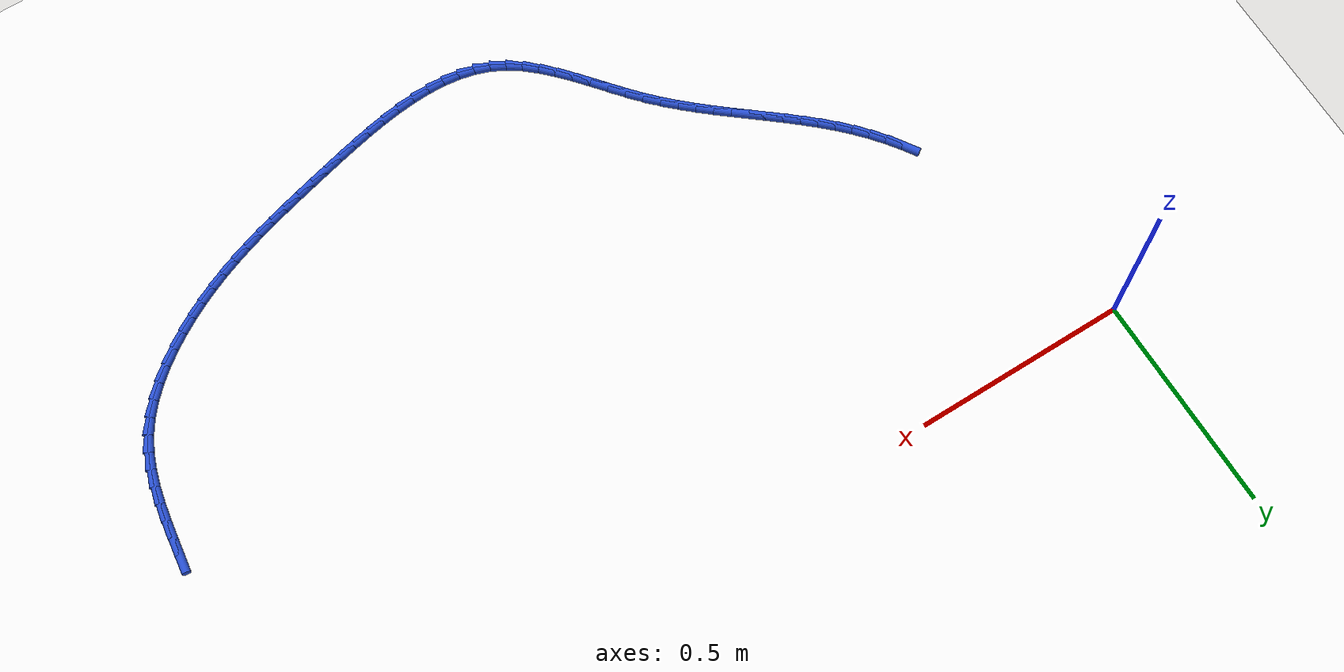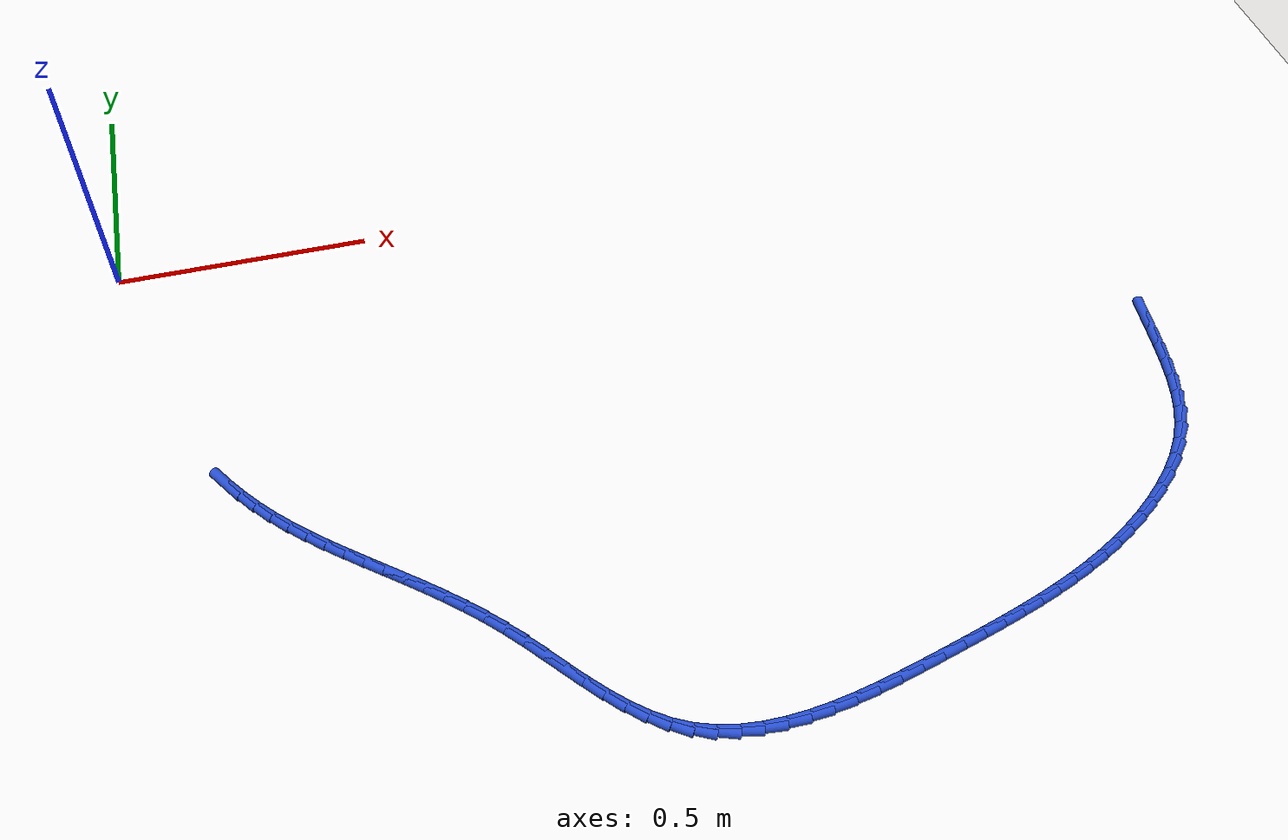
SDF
<sdf version="1.6">
 <world name="default">
  <model name="ground_plane">
   <static>1</static>
   <link name="link">
    <collision name="collision">
     <geometry><plane><normal>0 0 1</normal><size>100 100</size></plane></geometry>
     <surface><friction><ode><mu>100</mu><mu2>50</mu2></ode></friction></surface>
    </collision>
    <visual name="visual">
     <cast_shadows>0</cast_shadows>
     <geometry><plane><normal>0 0 1</normal><size>100 100</size></plane></geometry>
     <material>
      <script><uri>file://media/materials/scripts/gazebo.material</uri><name>Gazebo/WhiteGlow</name></script>
     </material>
    </visual>
   </link>
  </model>
  <model name="line">
   <link name="link_105">
    <pose>1.973548357519449 -0.58025492944759 0.01 0 1.57 1.4492766903073717</pose>
    <collision name="collision">
     <geometry><cylinder><radius>0.01</radius><length>0.08</length></cylinder></geometry>
    </collision>
    <visual name="visual">
     <material>
      <script><name>Gazebo/Blue</name><uri>file://media/materials/scripts/gazebo.material</uri></script>
     </material>
     <geometry><cylinder><radius>0.01</radius><length>0.08</length></cylinder></geometry>
    </visual>
   </link>
   <link name="link_106">
    <pose>1.9685726099421552 -0.6209992177766201 0.01 0 1.57 1.4419335434314304</pose>
    <collision name="collision">
     <geometry><cylinder><radius>0.01</radius><length>0.08</length></cylinder></geometry>
    </collision>
    <visual name="visual">
     <material>
      <script><name>Gazebo/Blue</name><uri>file://media/materials/scripts/gazebo.material</uri></script>
     </material>
     <geometry><cylinder><radius>0.01</radius><length>0.08</length></cylinder></geometry>
    </visual>
   </link>
   <link name="link_107">
    <pose>1.9633410162795428 -0.6613724230700463 0.01 0 1.57 1.4175273339095478</pose>
    <collision name="collision">
     <geometry><cylinder><radius>0.01</radius><length>0.08</length></cylinder></geometry>
    </collision>
    <visual name="visual">
     <material>
      <script><name>Gazebo/Blue</name><uri>file://media/materials/scripts/gazebo.material</uri></script>
     </material>
     <geometry><cylinder><radius>0.01</radius><length>0.08</length></cylinder></geometry>
    </visual>
   </link>
   <link name="link_108">
    <pose>1.957198220296294 -0.7011366274423665 0.01 0 1.57 1.3752323051563866</pose>
    <collision name="collision">
     <geometry><cylinder><radius>0.01</radius><length>0.08</length></cylinder></geometry>
    </collision>
    <visual name="visual">
     <material>
      <script><name>Gazebo/Blue</name><uri>file://media/materials/scripts/gazebo.material</uri></script>
     </material>
     <geometry><cylinder><radius>0.01</radius><length>0.08</length></cylinder></geometry>
    </visual>
   </link>
   <link name="link_109">
    <pose>1.9494888657570926 -0.740053913008079 0.01 0 1.57 1.3140817771518702</pose>
    <collision name="collision">
     <geometry><cylinder><radius>0.01</radius><length>0.08</length></cylinder></geometry>
    </collision>
    <visual name="visual">
     <material>
      <script><name>Gazebo/Blue</name><uri>file://media/materials/scripts/gazebo.material</uri></script>
     </material>
     <geometry><cylinder><radius>0.01</radius><length>0.08</length></cylinder></geometry>
    </visual>
   </link>
   <link name="link_110">
    <pose>1.9395575964266218 -0.7778863618816805 0.01 0 1.57 1.2333860749965508</pose>
    <collision name="collision">
     <geometry><cylinder><radius>0.01</radius><length>0.08</length></cylinder></geometry>
    </collision>
    <visual name="visual">
     <material>
      <script><name>Gazebo/Blue</name><uri>file://media/materials/scripts/gazebo.material</uri></script>
     </material>
     <geometry><cylinder><radius>0.01</radius><length>0.08</length></cylinder></geometry>
    </visual>
   </link>
   <link name="link_111">
    <pose>1.9267490560695637 -0.814396056177669 0.01 0 1.57 1.1334263797735051</pose>
    <collision name="collision">
     <geometry><cylinder><radius>0.01</radius><length>0.08</length></cylinder></geometry>
    </collision>
    <visual name="visual">
     <material>
      <script><name>Gazebo/Blue</name><uri>file://media/materials/scripts/gazebo.material</uri></script>
     </material>
     <geometry><cylinder><radius>0.01</radius><length>0.08</length></cylinder></geometry>
    </visual>
   </link>
   <link name="link_112">
    <pose>1.9104078884506035 -0.8493450780105428 0.01 0 1.57 1.0185992671122497</pose>
    <collision name="collision">
     <geometry><cylinder><radius>0.01</radius><length>0.08</length></cylinder></geometry>
    </collision>
    <visual name="visual">
     <material>
      <script><name>Gazebo/Blue</name><uri>file://media/materials/scripts/gazebo.material</uri></script>
     </material>
     <geometry><cylinder><radius>0.01</radius><length>0.08</length></cylinder></geometry>
    </visual>
   </link>
   <link name="link_113">
    <pose>1.889973962904009 -0.8825099161663439 0.01 0 1.57 0.9109781352713204</pose>
    <collision name="collision">
     <geometry><cylinder><radius>0.01</radius><length>0.08</length></cylinder></geometry>
    </collision>
    <visual name="visual">
     <material>
      <script><name>Gazebo/Blue</name><uri>file://media/materials/scripts/gazebo.material</uri></script>
     </material>
     <geometry><cylinder><radius>0.01</radius><length>0.08</length></cylinder></geometry>
    </visual>
   </link>
   <link name="link_114">
    <pose>1.8657057453491683 -0.9137909048665465 0.01 0 1.57 0.8194373521275445</pose>
    <collision name="collision">
     <geometry><cylinder><radius>0.01</radius><length>0.08</length></cylinder></geometry>
    </collision>
    <visual name="visual">
     <material>
      <script><name>Gazebo/Blue</name><uri>file://media/materials/scripts/gazebo.material</uri></script>
     </material>
     <geometry><cylinder><radius>0.01</radius><length>0.08</length></cylinder></geometry>
    </visual>
   </link>
   <link name="link_115">
    <pose>1.8382788992912098 -0.9431514961340004 0.01 0 1.57 0.7417631154560147</pose>
    <collision name="collision">
     <geometry><cylinder><radius>0.01</radius><length>0.08</length></cylinder></geometry>
    </collision>
    <visual name="visual">
     <material>
      <script><name>Gazebo/Blue</name><uri>file://media/materials/scripts/gazebo.material</uri></script>
     </material>
     <geometry><cylinder><radius>0.01</radius><length>0.08</length></cylinder></geometry>
    </visual>
   </link>
   <link name="link_116">
    <pose>1.8083724100826366 -0.9705556445536729 0.01 0 1.57 0.6756238333006152</pose>
    <collision name="collision">
     <geometry><cylinder><radius>0.01</radius><length>0.08</length></cylinder></geometry>
    </collision>
    <visual name="visual">
     <material>
      <script><name>Gazebo/Blue</name><uri>file://media/materials/scripts/gazebo.material</uri></script>
     </material>
     <geometry><cylinder><radius>0.01</radius><length>0.08</length></cylinder></geometry>
    </visual>
   </link>
   <link name="link_117">
    <pose>1.7766652630759519 -0.9959673047105341 0.01 0 1.57 0.6189052315030186</pose>
    <collision name="collision">
     <geometry><cylinder><radius>0.01</radius><length>0.08</length></cylinder></geometry>
    </collision>
    <visual name="visual">
     <material>
      <script><name>Gazebo/Blue</name><uri>file://media/materials/scripts/gazebo.material</uri></script>
     </material>
     <geometry><cylinder><radius>0.01</radius><length>0.08</length></cylinder></geometry>
    </visual>
   </link>
   <link name="link_118">
    <pose>1.7438350545973689 -1.0193508689567439 0.01 0 1.57 0.5683755550321087</pose>
    <collision name="collision">
     <geometry><cylinder><radius>0.01</radius><length>0.08</length></cylinder></geometry>
    </collision>
    <visual name="visual">
     <material>
      <script><name>Gazebo/Blue</name><uri>file://media/materials/scripts/gazebo.material</uri></script>
     </material>
     <geometry><cylinder><radius>0.01</radius><length>0.08</length></cylinder></geometry>
    </visual>
   </link>
   <link name="link_119">
    <pose>1.7103510976298888 -1.040736372472757 0.01 0 1.57 0.5206629766370178</pose>
    <collision name="collision">
     <geometry><cylinder><radius>0.01</radius><length>0.08</length></cylinder></geometry>
    </collision>
    <visual name="visual">
     <material>
      <script><name>Gazebo/Blue</name><uri>file://media/materials/scripts/gazebo.material</uri></script>
     </material>
     <geometry><cylinder><radius>0.01</radius><length>0.08</length></cylinder></geometry>
    </visual>
   </link>
   <link name="link_120">
    <pose>1.6762545231884156 -1.060288796781723 0.01 0 1.57 0.4760249585731984</pose>
    <collision name="collision">
     <geometry><cylinder><radius>0.01</radius><length>0.08</length></cylinder></geometry>
    </collision>
    <visual name="visual">
     <material>
      <script><name>Gazebo/Blue</name><uri>file://media/materials/scripts/gazebo.material</uri></script>
     </material>
     <geometry><cylinder><radius>0.01</radius><length>0.08</length></cylinder></geometry>
    </visual>
   </link>
   <link name="link_121">
    <pose>1.6415337949174587 -1.0781897221184211 0.01 0 1.57 0.43503142405896017</pose>
    <collision name="collision">
     <geometry><cylinder><radius>0.01</radius><length>0.08</length></cylinder></geometry>
    </collision>
    <visual name="visual">
     <material>
      <script><name>Gazebo/Blue</name><uri>file://media/materials/scripts/gazebo.material</uri></script>
     </material>
     <geometry><cylinder><radius>0.01</radius><length>0.08</length></cylinder></geometry>
    </visual>
   </link>
   <link name="link_122">
    <pose>1.6061773764615264 -1.0946207287176315 0.01 0 1.57 0.39812693904847246</pose>
    <collision name="collision">
     <geometry><cylinder><radius>0.01</radius><length>0.08</length></cylinder></geometry>
    </collision>
    <visual name="visual">
     <material>
      <script><name>Gazebo/Blue</name><uri>file://media/materials/scripts/gazebo.material</uri></script>
     </material>
     <geometry><cylinder><radius>0.01</radius><length>0.08</length></cylinder></geometry>
    </visual>
   </link>
   <link name="link_123">
    <pose>1.570173731465127 -1.109763396814135 0.01 0 1.57 0.3656280672524126</pose>
    <collision name="collision">
     <geometry><cylinder><radius>0.01</radius><length>0.08</length></cylinder></geometry>
    </collision>
    <visual name="visual">
     <material>
      <script><name>Gazebo/Blue</name><uri>file://media/materials/scripts/gazebo.material</uri></script>
     </material>
     <geometry><cylinder><radius>0.01</radius><length>0.08</length></cylinder></geometry>
    </visual>
   </link>
   <link name="link_124">
    <pose>1.5335113235727695 -1.1237993066427112 0.01 0 1.57 0.3377311822893552</pose>
    <collision name="collision">
     <geometry><cylinder><radius>0.01</radius><length>0.08</length></cylinder></geometry>
    </collision>
    <visual name="visual">
     <material>
      <script><name>Gazebo/Blue</name><uri>file://media/materials/scripts/gazebo.material</uri></script>
     </material>
     <geometry><cylinder><radius>0.01</radius><length>0.08</length></cylinder></geometry>
    </visual>
   </link>
   <link name="link_125">
    <pose>1.4961786164289634 -1.1369100384381403 0.01 0 1.57 0.31452708021511444</pose>
    <collision name="collision">
     <geometry><cylinder><radius>0.01</radius><length>0.08</length></cylinder></geometry>
    </collision>
    <visual name="visual">
     <material>
      <script><name>Gazebo/Blue</name><uri>file://media/materials/scripts/gazebo.material</uri></script>
     </material>
     <geometry><cylinder><radius>0.01</radius><length>0.08</length></cylinder></geometry>
    </visual>
   </link>
   <link name="link_126">
    <pose>1.4581640736782162 -1.1492771724352029 0.01 0 1.57 0.2960187635463503</pose>
    <collision name="collision">
     <geometry><cylinder><radius>0.01</radius><length>0.08</length></cylinder></geometry>
    </collision>
    <visual name="visual">
     <material>
      <script><name>Gazebo/Blue</name><uri>file://media/materials/scripts/gazebo.material</uri></script>
     </material>
     <geometry><cylinder><radius>0.01</radius><length>0.08</length></cylinder></geometry>
    </visual>
   </link>
   <link name="link_127">
    <pose>1.419456158965038 -1.1610822888686785 0.01 0 1.57 0.2821394709285155</pose>
    <collision name="collision">
     <geometry><cylinder><radius>0.01</radius><length>0.08</length></cylinder></geometry>
    </collision>
    <visual name="visual">
     <material>
      <script><name>Gazebo/Blue</name><uri>file://media/materials/scripts/gazebo.material</uri></script>
     </material>
     <geometry><cylinder><radius>0.01</radius><length>0.08</length></cylinder></geometry>
    </visual>
   </link>
   <link name="link_128">
    <pose>1.3800433359339372 -1.1725069679733473 0.01 0 1.57 0.27276899086915113</pose>
    <collision name="collision">
     <geometry><cylinder><radius>0.01</radius><length>0.08</length></cylinder></geometry>
    </collision>
    <visual name="visual">
     <material>
      <script><name>Gazebo/Blue</name><uri>file://media/materials/scripts/gazebo.material</uri></script>
     </material>
     <geometry><cylinder><radius>0.01</radius><length>0.08</length></cylinder></geometry>
    </visual>
   </link>
   <link name="link_129">
    <pose>1.3399140682294226 -1.1837327899839896 0.01 0 1.57 0.2677205244798451</pose>
    <collision name="collision">
     <geometry><cylinder><radius>0.01</radius><length>0.08</length></cylinder></geometry>
    </collision>
    <visual name="visual">
     <material>
      <script><name>Gazebo/Blue</name><uri>file://media/materials/scripts/gazebo.material</uri></script>
     </material>
     <geometry><cylinder><radius>0.01</radius><length>0.08</length></cylinder></geometry>
    </visual>
   </link>
   <link name="link_130">
    <pose>1.2990573854043366 -1.194940007155731 0.01 0 1.57 0.2631105886903421</pose>
    <collision name="collision">
     <geometry><cylinder><radius>0.01</radius><length>0.08</length></cylinder></geometry>
    </collision>
    <visual name="visual">
     <material>
      <script><name>Gazebo/Blue</name><uri>file://media/materials/scripts/gazebo.material</uri></script>
     </material>
     <geometry><cylinder><radius>0.01</radius><length>0.08</length></cylinder></geometry>
    </visual>
   </link>
   <link name="link_131">
    <pose>1.257541759295618 -1.2061224497901764 0.01 0 1.57 0.2514373907128841</pose>
    <collision name="collision">
     <geometry><cylinder><radius>0.01</radius><length>0.08</length></cylinder></geometry>
    </collision>
    <visual name="visual">
     <material>
      <script><name>Gazebo/Blue</name><uri>file://media/materials/scripts/gazebo.material</uri></script>
     </material>
     <geometry><cylinder><radius>0.01</radius><length>0.08</length></cylinder></geometry>
    </visual>
   </link>
   <link name="link_132">
    <pose>1.2155962322456166 -1.2168971480045587 0.01 0 1.57 0.23168256450626273</pose>
    <collision name="collision">
     <geometry><cylinder><radius>0.01</radius><length>0.08</length></cylinder></geometry>
    </collision>
    <visual name="visual">
     <material>
      <script><name>Gazebo/Blue</name><uri>file://media/materials/scripts/gazebo.material</uri></script>
     </material>
     <geometry><cylinder><radius>0.01</radius><length>0.08</length></cylinder></geometry>
    </visual>
   </link>
   <link name="link_133">
    <pose>1.1734692031532084 -1.2268357091652053 0.01 0 1.57 0.2033780297224046</pose>
    <collision name="collision">
     <geometry><cylinder><radius>0.01</radius><length>0.08</length></cylinder></geometry>
    </collision>
    <visual name="visual">
     <material>
      <script><name>Gazebo/Blue</name><uri>file://media/materials/scripts/gazebo.material</uri></script>
     </material>
     <geometry><cylinder><radius>0.01</radius><length>0.08</length></cylinder></geometry>
    </visual>
   </link>
   <link name="link_134">
    <pose>1.1314090709172715 -1.2355097406384437 0.01 0 1.57 0.16569953524131742</pose>
    <collision name="collision">
     <geometry><cylinder><radius>0.01</radius><length>0.08</length></cylinder></geometry>
    </collision>
    <visual name="visual">
     <material>
      <script><name>Gazebo/Blue</name><uri>file://media/materials/scripts/gazebo.material</uri></script>
     </material>
     <geometry><cylinder><radius>0.01</radius><length>0.08</length></cylinder></geometry>
    </visual>
   </link>
   <link name="link_135">
    <pose>1.0896642344366838 -1.2424908497906009 0.01 0 1.57 0.11746689904787151</pose>
    <collision name="collision">
     <geometry><cylinder><radius>0.01</radius><length>0.08</length></cylinder></geometry>
    </collision>
    <visual name="visual">
     <material>
      <script><name>Gazebo/Blue</name><uri>file://media/materials/scripts/gazebo.material</uri></script>
     </material>
     <geometry><cylinder><radius>0.01</radius><length>0.08</length></cylinder></geometry>
    </visual>
   </link>
   <link name="link_136">
    <pose>1.0484830926103228 -1.2473506439880042 0.01 0 1.57 0.05716186302606043</pose>
    <collision name="collision">
     <geometry><cylinder><radius>0.01</radius><length>0.08</length></cylinder></geometry>
    </collision>
    <visual name="visual">
     <material>
      <script><name>Gazebo/Blue</name><uri>file://media/materials/scripts/gazebo.material</uri></script>
     </material>
     <geometry><cylinder><radius>0.01</radius><length>0.08</length></cylinder></geometry>
    </visual>
   </link>
   <link name="link_137">
    <pose>1.0081140443370655 -1.249660730596981 0.01 0 1.57 -0.016992466473849596</pose>
    <collision name="collision">
     <geometry><cylinder><radius>0.01</radius><length>0.08</length></cylinder></geometry>
    </collision>
    <visual name="visual">
     <material>
      <script><name>Gazebo/Blue</name><uri>file://media/materials/scripts/gazebo.material</uri></script>
     </material>
     <geometry><cylinder><radius>0.01</radius><length>0.08</length></cylinder></geometry>
    </visual>
   </link>
   <link name="link_138">
    <pose>0.9688054885157915 -1.248992716983859 0.01 0 1.57 -0.10681668600473596</pose>
    <collision name="collision">
     <geometry><cylinder><radius>0.01</radius><length>0.08</length></cylinder></geometry>
    </collision>
    <visual name="visual">
     <material>
      <script><name>Gazebo/Blue</name><uri>file://media/materials/scripts/gazebo.material</uri></script>
     </material>
     <geometry><cylinder><radius>0.01</radius><length>0.08</length></cylinder></geometry>
    </visual>
   </link>
   <link name="link_139">
    <pose>0.9308058240453776 -1.2449182105149659 0.01 0 1.57 -0.2137236107817777</pose>
    <collision name="collision">
     <geometry><cylinder><radius>0.01</radius><length>0.08</length></cylinder></geometry>
    </collision>
    <visual name="visual">
     <material>
      <script><name>Gazebo/Blue</name><uri>file://media/materials/scripts/gazebo.material</uri></script>
     </material>
     <geometry><cylinder><radius>0.01</radius><length>0.08</length></cylinder></geometry>
    </visual>
   </link>
   <link name="link_140">
    <pose>0.8943634498247013 -1.237008818556628 0.01 0 1.57 -0.33795589828112454</pose>
    <collision name="collision">
     <geometry><cylinder><radius>0.01</radius><length>0.08</length></cylinder></geometry>
    </collision>
    <visual name="visual">
     <material>
      <script><name>Gazebo/Blue</name><uri>file://media/materials/scripts/gazebo.material</uri></script>
     </material>
     <geometry><cylinder><radius>0.01</radius><length>0.08</length></cylinder></geometry>
    </visual>
   </link>
   <link name="link_141">
    <pose>0.8597267647526409 -1.2248361484751737 0.01 0 1.57 -0.47642779423627046</pose>
    <collision name="collision">
     <geometry><cylinder><radius>0.01</radius><length>0.08</length></cylinder></geometry>
    </collision>
    <visual name="visual">
     <material>
      <script><name>Gazebo/Blue</name><uri>file://media/materials/scripts/gazebo.material</uri></script>
     </material>
     <geometry><cylinder><radius>0.01</radius><length>0.08</length></cylinder></geometry>
    </visual>
   </link>
   <link name="link_142">
    <pose>0.8271238384225486 -1.2080104676727126 0.01 0 1.57 -0.6058727110438031</pose>
    <collision name="collision">
     <geometry><cylinder><radius>0.01</radius><length>0.08</length></cylinder></geometry>
    </collision>
    <visual name="visual">
     <material>
      <script><name>Gazebo/Blue</name><uri>file://media/materials/scripts/gazebo.material</uri></script>
     </material>
     <geometry><cylinder><radius>0.01</radius><length>0.08</length></cylinder></geometry>
    </visual>
   </link>
   <link name="link_143">
    <pose>0.7964557691623158 -1.186763841517239 0.01 0 1.57 -0.7085120730717458</pose>
    <collision name="collision">
     <geometry><cylinder><radius>0.01</radius><length>0.08</length></cylinder></geometry>
    </collision>
    <visual name="visual">
     <material>
      <script><name>Gazebo/Blue</name><uri>file://media/materials/scripts/gazebo.material</uri></script>
     </material>
     <geometry><cylinder><radius>0.01</radius><length>0.08</length></cylinder></geometry>
    </visual>
   </link>
   <link name="link_144">
    <pose>0.76735976505829 -1.1618301727940952 0.01 0 1.57 -0.7850076913133065</pose>
    <collision name="collision">
     <geometry><cylinder><radius>0.01</radius><length>0.08</length></cylinder></geometry>
    </collision>
    <visual name="visual">
     <material>
      <script><name>Gazebo/Blue</name><uri>file://media/materials/scripts/gazebo.material</uri></script>
     </material>
     <geometry><cylinder><radius>0.01</radius><length>0.08</length></cylinder></geometry>
    </visual>
   </link>
   <link name="link_145">
    <pose>0.7394655030669842 -1.1339576861624567 0.01 0 1.57 -0.8378696654804044</pose>
    <collision name="collision">
     <geometry><cylinder><radius>0.01</radius><length>0.08</length></cylinder></geometry>
    </collision>
    <visual name="visual">
     <material>
      <script><name>Gazebo/Blue</name><uri>file://media/materials/scripts/gazebo.material</uri></script>
     </material>
     <geometry><cylinder><radius>0.01</radius><length>0.08</length></cylinder></geometry>
    </visual>
   </link>
   <link name="link_146">
    <pose>0.7124026601449136 -1.1038946062815012 0.01 0 1.57 -0.8695892866411291</pose>
    <collision name="collision">
     <geometry><cylinder><radius>0.01</radius><length>0.08</length></cylinder></geometry>
    </collision>
    <visual name="visual">
     <material>
      <script><name>Gazebo/Blue</name><uri>file://media/materials/scripts/gazebo.material</uri></script>
     </material>
     <geometry><cylinder><radius>0.01</radius><length>0.08</length></cylinder></geometry>
    </visual>
   </link>
   <link name="link_147">
    <pose>0.685800913248592 -1.0723891578104041 0.01 0 1.57 -0.8819892293924875</pose>
    <collision name="collision">
     <geometry><cylinder><radius>0.01</radius><length>0.08</length></cylinder></geometry>
    </collision>
    <visual name="visual">
     <material>
      <script><name>Gazebo/Blue</name><uri>file://media/materials/scripts/gazebo.material</uri></script>
     </material>
     <geometry><cylinder><radius>0.01</radius><length>0.08</length></cylinder></geometry>
    </visual>
   </link>
   <link name="link_148">
    <pose>0.6592899393345328 -1.0401895654083413 0.01 0 1.57 -0.8760103631522524</pose>
    <collision name="collision">
     <geometry><cylinder><radius>0.01</radius><length>0.08</length></cylinder></geometry>
    </collision>
    <visual name="visual">
     <material>
      <script><name>Gazebo/Blue</name><uri>file://media/materials/scripts/gazebo.material</uri></script>
     </material>
     <geometry><cylinder><radius>0.01</radius><length>0.08</length></cylinder></geometry>
    </visual>
   </link>
   <link name="link_149">
    <pose>0.6324994153592514 -1.00804405373449 0.01 0 1.57 -0.8516936874249139</pose>
    <collision name="collision">
     <geometry><cylinder><radius>0.01</radius><length>0.08</length></cylinder></geometry>
    </collision>
    <visual name="visual">
     <material>
      <script><name>Gazebo/Blue</name><uri>file://media/materials/scripts/gazebo.material</uri></script>
     </material>
     <geometry><cylinder><radius>0.01</radius><length>0.08</length></cylinder></geometry>
    </visual>
   </link>
   <link name="link_150">
    <pose>0.6050590182792612 -0.9767008474480258 0.01 0 1.57 -0.8107797831204643</pose>
    <collision name="collision">
     <geometry><cylinder><radius>0.01</radius><length>0.08</length></cylinder></geometry>
    </collision>
    <visual name="visual">
     <material>
      <script><name>Gazebo/Blue</name><uri>file://media/materials/scripts/gazebo.material</uri></script>
     </material>
     <geometry><cylinder><radius>0.01</radius><length>0.08</length></cylinder></geometry>
    </visual>
   </link>
   <link name="link_151">
    <pose>0.5766520941964979 -0.946814015607894 0.01 0 1.57 -0.7697194010201391</pose>
    <collision name="collision">
     <geometry><cylinder><radius>0.01</radius><length>0.08</length></cylinder></geometry>
    </collision>
    <visual name="visual">
     <material>
      <script><name>Gazebo/Blue</name><uri>file://media/materials/scripts/gazebo.material</uri></script>
     </material>
     <geometry><cylinder><radius>0.01</radius><length>0.08</length></cylinder></geometry>
    </visual>
   </link>
   <link name="link_152">
    <pose>0.5473280652089667 -0.9183953941077834 0.01 0 1.57 -0.7359642907810505</pose>
    <collision name="collision">
     <geometry><cylinder><radius>0.01</radius><length>0.08</length></cylinder></geometry>
    </collision>
    <visual name="visual">
     <material>
      <script><name>Gazebo/Blue</name><uri>file://media/materials/scripts/gazebo.material</uri></script>
     </material>
     <geometry><cylinder><radius>0.01</radius><length>0.08</length></cylinder></geometry>
    </visual>
   </link>
   <link name="link_153">
    <pose>0.5172891862850915 -0.891188693263152 0.01 0 1.57 -0.7098594774816815</pose>
    <collision name="collision">
     <geometry><cylinder><radius>0.01</radius><length>0.08</length></cylinder></geometry>
    </collision>
    <visual name="visual">
     <material>
      <script><name>Gazebo/Blue</name><uri>file://media/materials/scripts/gazebo.material</uri></script>
     </material>
     <geometry><cylinder><radius>0.01</radius><length>0.08</length></cylinder></geometry>
    </visual>
   </link>
   <link name="link_154">
    <pose>0.48673822266838246 -0.8649367281775644 0.01 0 1.57 -0.691622834742131</pose>
    <collision name="collision">
     <geometry><cylinder><radius>0.01</radius><length>0.08</length></cylinder></geometry>
    </collision>
    <visual name="visual">
     <material>
      <script><name>Gazebo/Blue</name><uri>file://media/materials/scripts/gazebo.material</uri></script>
     </material>
     <geometry><cylinder><radius>0.01</radius><length>0.08</length></cylinder></geometry>
    </visual>
   </link>
   <link name="link_155">
    <pose>0.4558779396023526 -0.8393823139545875 0.01 0 1.57 -0.6814112560247171</pose>
    <collision name="collision">
     <geometry><cylinder><radius>0.01</radius><length>0.08</length></cylinder></geometry>
    </collision>
    <visual name="visual">
     <material>
      <script><name>Gazebo/Blue</name><uri>file://media/materials/scripts/gazebo.material</uri></script>
     </material>
     <geometry><cylinder><radius>0.01</radius><length>0.08</length></cylinder></geometry>
    </visual>
   </link>
   <link name="link_156">
    <pose>0.4249111023305126 -0.8142682656977868 0.01 0 1.57 -0.6793530264938299</pose>
    <collision name="collision">
     <geometry><cylinder><radius>0.01</radius><length>0.08</length></cylinder></geometry>
    </collision>
    <visual name="visual">
     <material>
      <script><name>Gazebo/Blue</name><uri>file://media/materials/scripts/gazebo.material</uri></script>
     </material>
     <geometry><cylinder><radius>0.01</radius><length>0.08</length></cylinder></geometry>
    </visual>
   </link>
   <link name="link_157">
    <pose>0.3940404760963738 -0.7893373985107275 0.01 0 1.57 -0.6855669183120385</pose>
    <collision name="collision">
     <geometry><cylinder><radius>0.01</radius><length>0.08</length></cylinder></geometry>
    </collision>
    <visual name="visual">
     <material>
      <script><name>Gazebo/Blue</name><uri>file://media/materials/scripts/gazebo.material</uri></script>
     </material>
     <geometry><cylinder><radius>0.01</radius><length>0.08</length></cylinder></geometry>
    </visual>
   </link>
   <link name="link_158">
    <pose>0.3634688261434476 -0.7643325274969757 0.01 0 1.57 -0.7001658283750366</pose>
    <collision name="collision">
     <geometry><cylinder><radius>0.01</radius><length>0.08</length></cylinder></geometry>
    </collision>
    <visual name="visual">
     <material>
      <script><name>Gazebo/Blue</name><uri>file://media/materials/scripts/gazebo.material</uri></script>
     </material>
     <geometry><cylinder><radius>0.01</radius><length>0.08</length></cylinder></geometry>
    </visual>
   </link>
   <link name="link_159">
    <pose>0.3333989177152449 -0.7389964677600962 0.01 0 1.57 -0.7232432289482779</pose>
    <collision name="collision">
     <geometry><cylinder><radius>0.01</radius><length>0.08</length></cylinder></geometry>
    </collision>
    <visual name="visual">
     <material>
      <script><name>Gazebo/Blue</name><uri>file://media/materials/scripts/gazebo.material</uri></script>
     </material>
     <geometry><cylinder><radius>0.01</radius><length>0.08</length></cylinder></geometry>
    </visual>
   </link>
   <link name="link_160">
    <pose>0.304033516055278 -0.7130720344036561 0.01 0 1.57 -0.7548410437503545</pose>
    <collision name="collision">
     <geometry><cylinder><radius>0.01</radius><length>0.08</length></cylinder></geometry>
    </collision>
    <visual name="visual">
     <material>
      <script><name>Gazebo/Blue</name><uri>file://media/materials/scripts/gazebo.material</uri></script>
     </material>
     <geometry><cylinder><radius>0.01</radius><length>0.08</length></cylinder></geometry>
    </visual>
   </link>
   <link name="link_161">
    <pose>0.27557538640705775 -0.6863020425312202 0.01 0 1.57 -0.7948986929821023</pose>
    <collision name="collision">
     <geometry><cylinder><radius>0.01</radius><length>0.08</length></cylinder></geometry>
    </collision>
    <visual name="visual">
     <material>
      <script><name>Gazebo/Blue</name><uri>file://media/materials/scripts/gazebo.material</uri></script>
     </material>
     <geometry><cylinder><radius>0.01</radius><length>0.08</length></cylinder></geometry>
    </visual>
   </link>
   <link name="link_162">
    <pose>0.24822729401409574 -0.6584293072463542 0.01 0 1.57 -0.8430212277865539</pose>
    <collision name="collision">
     <geometry><cylinder><radius>0.01</radius><length>0.08</length></cylinder></geometry>
    </collision>
    <visual name="visual">
     <material>
      <script><name>Gazebo/Blue</name><uri>file://media/materials/scripts/gazebo.material</uri></script>
     </material>
     <geometry><cylinder><radius>0.01</radius><length>0.08</length></cylinder></geometry>
    </visual>
   </link>
   <link name="link_163">
    <pose>0.2221885972985936 -0.6292025142752147 0.01 0 1.57 -0.8942183099908457</pose>
    <collision name="collision">
     <geometry><cylinder><radius>0.01</radius><length>0.08</length></cylinder></geometry>
    </collision>
    <visual name="visual">
     <material>
      <script><name>Gazebo/Blue</name><uri>file://media/materials/scripts/gazebo.material</uri></script>
     </material>
     <geometry><cylinder><radius>0.01</radius><length>0.08</length></cylinder></geometry>
    </visual>
   </link>
   <link name="link_164">
    <pose>0.1975626644376757 -0.5985357593992712 0.01 0 1.57 -0.9432688872933892</pose>
    <collision name="collision">
     <geometry><cylinder><radius>0.01</radius><length>0.08</length></cylinder></geometry>
    </collision>
    <visual name="visual">
     <material>
      <script><name>Gazebo/Blue</name><uri>file://media/materials/scripts/gazebo.material</uri></script>
     </material>
     <geometry><cylinder><radius>0.01</radius><length>0.08</length></cylinder></geometry>
    </visual>
   </link>
   <link name="link_165">
    <pose>0.17434591670711047 -0.5665274289271648 0.01 0 1.57 -0.9900026007817037</pose>
    <collision name="collision">
     <geometry><cylinder><radius>0.01</radius><length>0.08</length></cylinder></geometry>
    </collision>
    <visual name="visual">
     <material>
      <script><name>Gazebo/Blue</name><uri>file://media/materials/scripts/gazebo.material</uri></script>
     </material>
     <geometry><cylinder><radius>0.01</radius><length>0.08</length></cylinder></geometry>
    </visual>
   </link>
  </model>
 </world>
</sdf>
